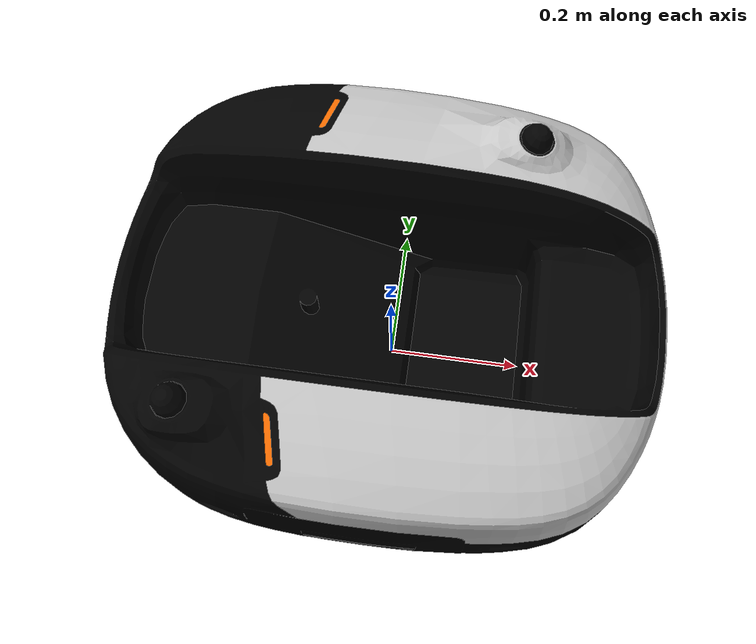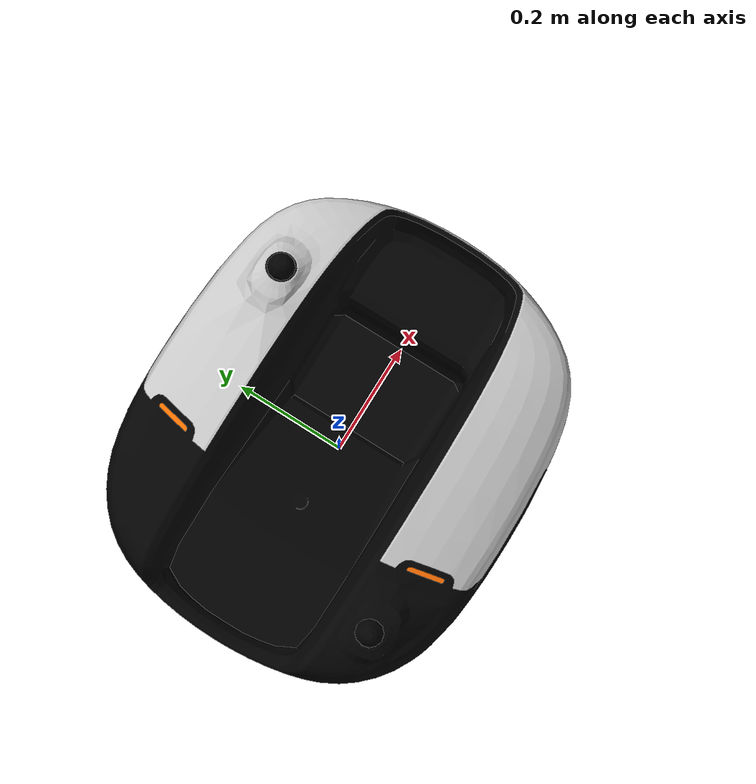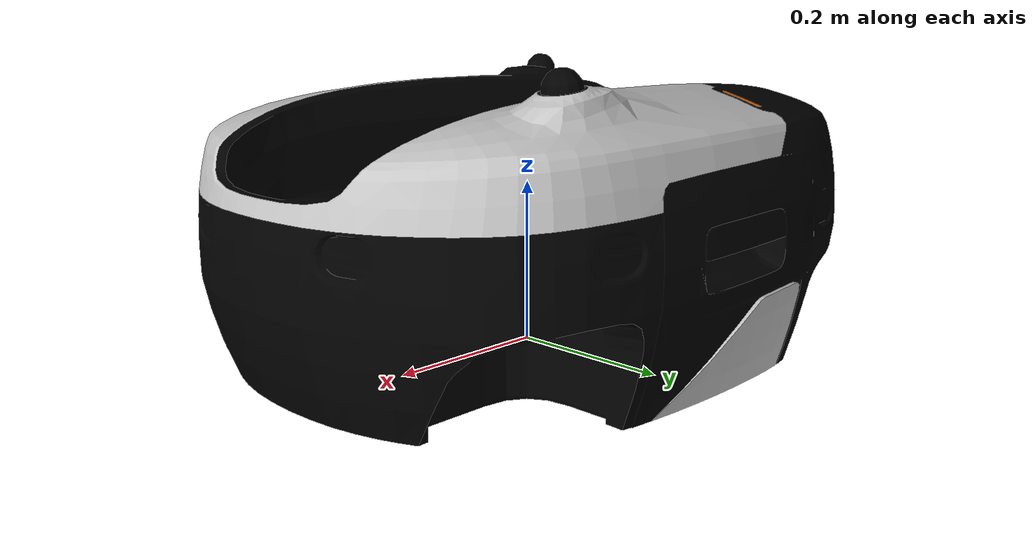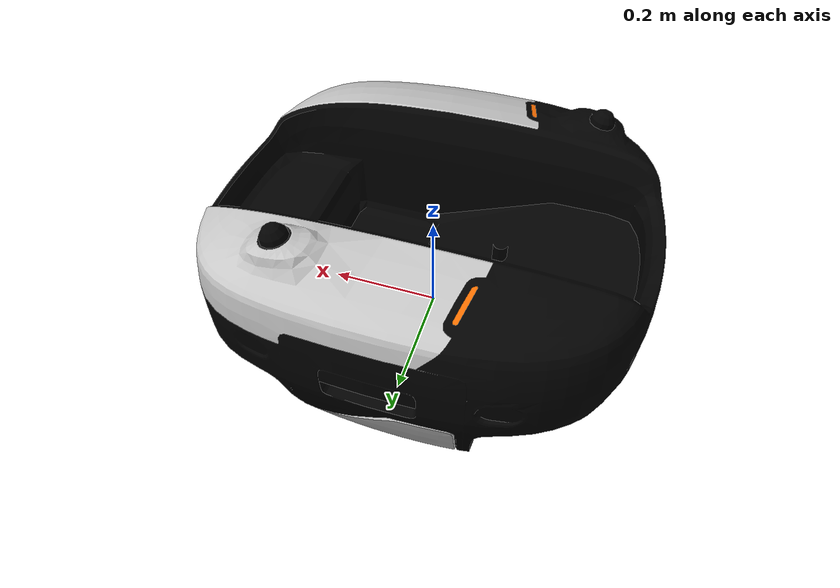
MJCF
<mujoco model="base_link">
  <default>
    <default class="visual">
      <geom group="2" type="mesh" contype="0" conaffinity="0"/>
    </default>
    <default class="collision">
      <geom group="3" type="mesh"/>
    </default>
  </default>
  <asset>
    <material name="material_base_link_0" specular="0.20000000000000004" shininess="1.0" rgba="0.00000000 0.00000000 0.00000000 1.0"/>
    <material name="material_base_link_1" specular="0.20000000000000004" shininess="1.0" rgba="0.76470588 0.76470588 0.76470588 1.0"/>
    <material name="material_base_link_2" specular="0.20000000000000004" shininess="1.0" rgba="0.98039216 0.43137255 0.00000000 1.0"/>
    <mesh file="base_link_0.obj"/>
    <mesh file="base_link_1.obj"/>
    <mesh file="base_link_2.obj"/>
  </asset>
  <worldbody>
    <body name="base_link">
      <geom mesh="base_link_0" material="material_base_link_2" class="visual"/>
      <geom mesh="base_link_1" material="material_base_link_1" class="visual"/>
      <geom mesh="base_link_2" material="material_base_link_0" class="visual"/>
      <geom mesh="base_link_0" class="collision"/>
      <geom mesh="base_link_1" class="collision"/>
      <geom mesh="base_link_2" class="collision"/>
    </body>
  </worldbody>
</mujoco>
